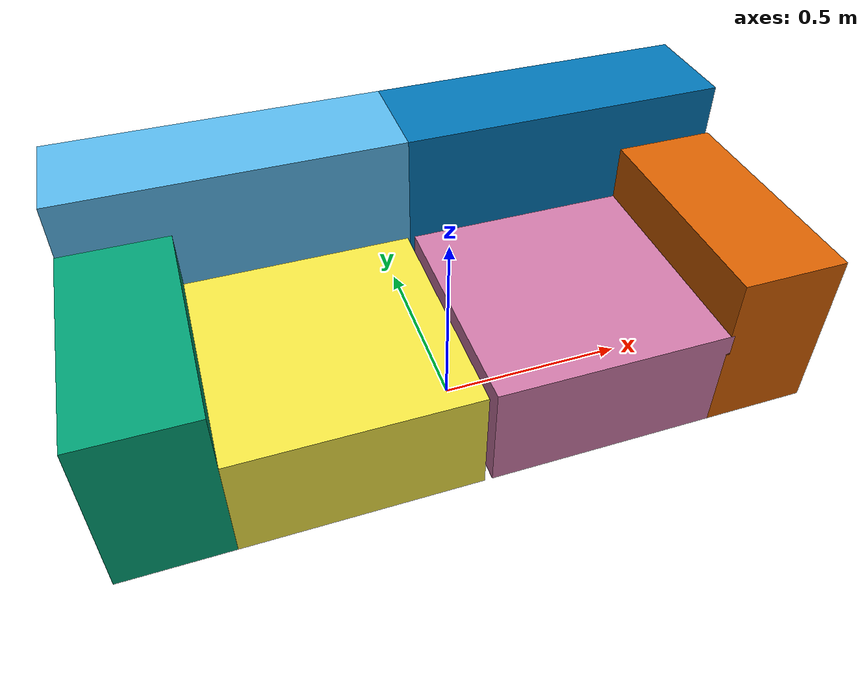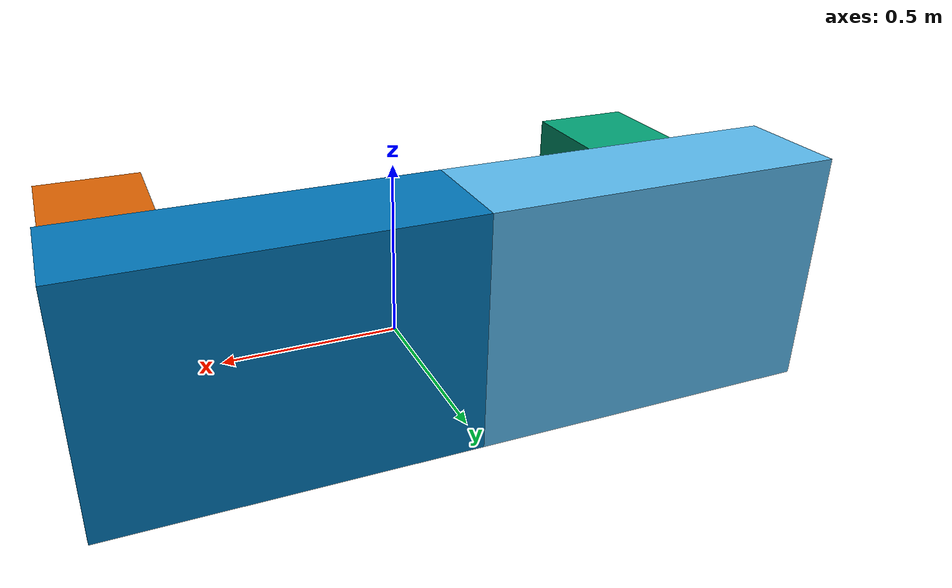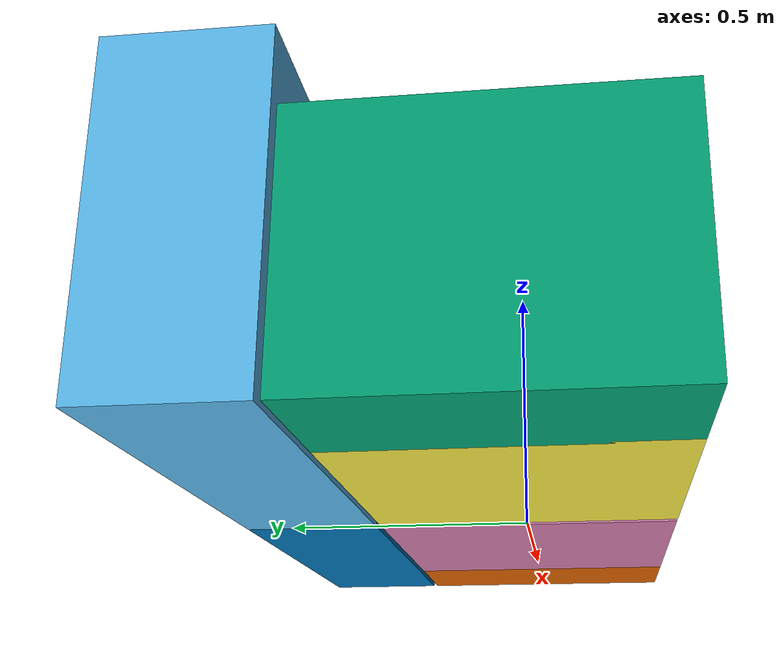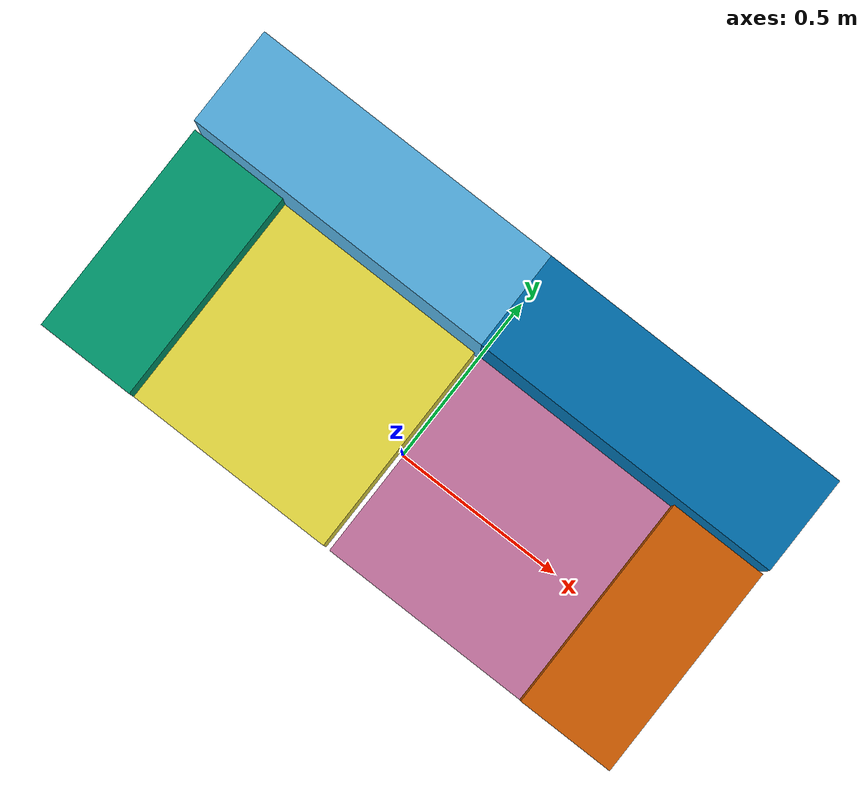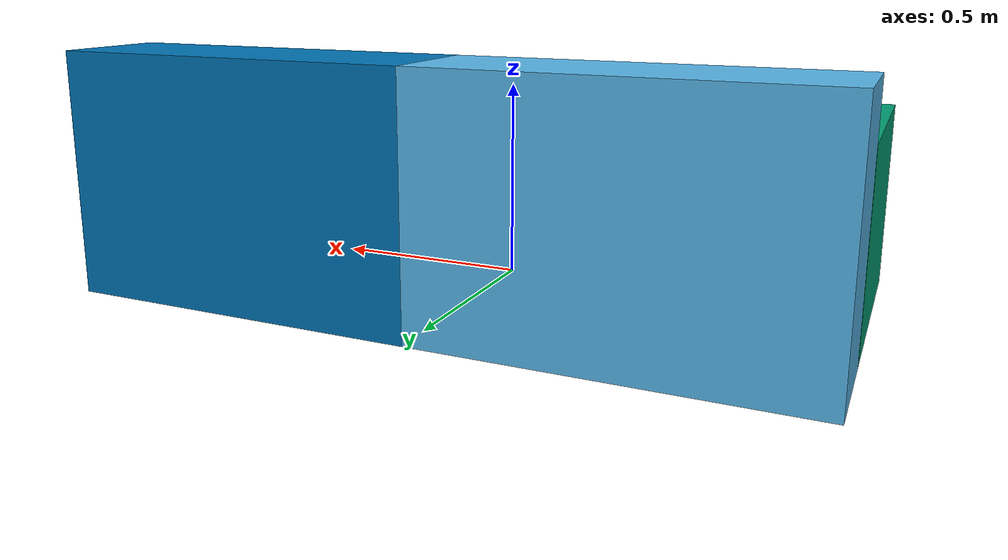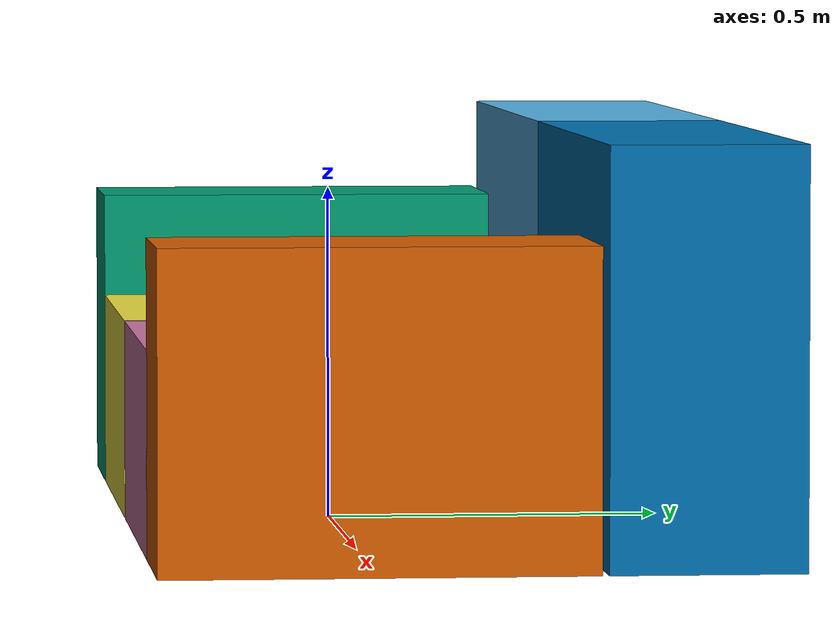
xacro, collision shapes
<?xml version="1.0"?>

<robot
	xmlns:sensor="http://playerstage.sourceforge.net/gazebo/xmlschema/#sensor"
	xmlns:controller="http://playerstage.sourceforge.net/gazebo/xmlschema/#controller"
	xmlns:interface="http://playerstage.sourceforge.net/gazebo/xmlschema/#interface"
	xmlns:xacro="http://playerstage.sourceforge.net/gazebo/xmlschema/#interface"
	name="couch">

<!-- dummy_link -->
	<link name="dummy_link">
		<inertial>
			<origin xyz="0 0 0" />
			<mass value="5.0" />
			<inertia ixx="0.0" ixy="0.0" ixz="0.0" iyy="0.0" iyz="0.0" izz="0.0" />
		</inertial>
		<visual>
			<origin xyz="0 0 0" />
			<geometry>
				<box size="0.00 0.00 0.00" />
			</geometry>
		</visual>
		<collision>
			<origin xyz="0 0 0" />
			<geometry>
				<box size="0.00 0.00 0.00" />
			</geometry>
		</collision>
	</link>

<!-- couch -->

	<!-- left couch back -->
	<link name="left_couch_back">
		<inertial>
			<origin xyz="0 0 0" />
			<mass value="5.0" />
			<inertia ixx="0.0" ixy="0.0" ixz="0.0" iyy="0.0" iyz="0.0" izz="0.0" />
		</inertial>
		<visual>
			<origin xyz="0 0 0" />
			<geometry>
				<mesh filename="package://cob_gazebo_objects/Media/materials/textures/couch_back.dae" />
			</geometry>
		</visual>
		<collision>
			<origin xyz="0 0 0" />
			<geometry>
				<box size="0.90 0.28 0.60" />
			</geometry>
		</collision>
	</link>

	<gazebo reference="left_couch_back">
	</gazebo>

	<joint name="joint_left_couch_back" type="fixed">
		<origin xyz="-0.45 0.46 0.300" rpy="0 0 0" />
		<parent link="dummy_link" />
		<child link="left_couch_back" />
	</joint>

	<!-- left couch side -->
	<link name="left_couch_side">
		<inertial>
			<origin xyz="0 0 0" />
			<mass value="5.0" />
			<inertia ixx="0.0" ixy="0.0" ixz="0.0" iyy="0.0" iyz="0.0" izz="0.0" />
		</inertial>
		<visual>
			<origin xyz="0 0 0" />
			<geometry>
				<mesh filename="package://cob_gazebo_objects/Media/materials/textures/couch_left_side.dae" />
			</geometry>
		</visual>
		<collision>
			<origin xyz="0 0 0" />
			<geometry>
				<box size="0.28 0.62 0.46" />
			</geometry>
		</collision>
	</link>

	<gazebo reference="left_couch_side">
	</gazebo>

	<joint name="joint_left_couch_side" type="fixed">
		<origin xyz="-0.76 0 0.23" rpy="0 0 0" />
		<parent link="dummy_link" />
		<child link="left_couch_side" />
	</joint>

	<!-- left couch middle -->
	<link name="left_couch_middle">
		<inertial>
			<origin xyz="0 0 0" />
			<mass value="5.0" />
			<inertia ixx="0.0" ixy="0.0" ixz="0.0" iyy="0.0" iyz="0.0" izz="0.0" />
		</inertial>
		<visual>
			<origin xyz="0 0 0" />
			<geometry>
				<mesh filename="package://cob_gazebo_objects/Media/materials/textures/couch_middle.dae" />
			</geometry>
		</visual>
		<collision>
			<origin xyz="0 0 0" />
			<geometry>
				<box size="0.62 0.62 0.30" />
			</geometry>
		</collision>
	</link>

	<gazebo reference="left_couch_middle">
	</gazebo>

	<joint name="joint_left_couch_middle" type="fixed">
		<origin xyz="-0.32 0 0.150" rpy="0 0 0" />
		<parent link="dummy_link" />
		<child link="left_couch_middle" />
	</joint>

	<!-- right couch back -->
	<link name="right_couch_back">
		<inertial>
			<origin xyz="0 0 0" />
			<mass value="5.0" />
			<inertia ixx="0.0" ixy="0.0" ixz="0.0" iyy="0.0" iyz="0.0" izz="0.0" />
		</inertial>
		<visual>
			<origin xyz="0 0 0" />
			<geometry>
				<mesh filename="package://cob_gazebo_objects/Media/materials/textures/couch_back.dae" />
			</geometry>
		</visual>
		<collision>
			<origin xyz="0 0 0" />
			<geometry>
				<box size="0.90 0.28 0.60" />
			</geometry>
		</collision>
	</link>

	<gazebo reference="right_couch_back">
	</gazebo>

	<joint name="joint_right_couch_back" type="fixed">
		<origin xyz="0.45 0.46 0.300" rpy="0 0 0" />
		<parent link="dummy_link" />
		<child link="right_couch_back" />
	</joint>

	<!-- right couch side -->
	<link name="right_couch_side">
		<inertial>
			<origin xyz="0 0 0" />
			<mass value="5.0" />
			<inertia ixx="0.0" ixy="0.0" ixz="0.0" iyy="0.0" iyz="0.0" izz="0.0" />
		</inertial>
		<visual>
			<origin xyz="0 0 0" />
			<geometry>
				<mesh filename="package://cob_gazebo_objects/Media/materials/textures/couch_right_side.dae" />
			</geometry>
		</visual>
		<collision>
			<origin xyz="0 0 0" />
			<geometry>
				<box size="0.28 0.62 0.46" />
			</geometry>
		</collision>
	</link>

	<gazebo reference="right_couch_side">
	</gazebo>

	<joint name="joint_right_couch_side" type="fixed">
		<origin xyz="0.76 0 0.230" rpy="0 0 0" />
		<parent link="dummy_link" />
		<child link="right_couch_side" />
	</joint>

	<!-- right couch middle -->
	<link name="right_couch_middle">
		<inertial>
			<origin xyz="0 0 0" />
			<mass value="5.0" />
			<inertia ixx="0.0" ixy="0.0" ixz="0.0" iyy="0.0" iyz="0.0" izz="0.0" />
		</inertial>
		<visual>
			<origin xyz="0 0 0" />
			<geometry>
				<mesh filename="package://cob_gazebo_objects/Media/materials/textures/couch_middle.dae" />
			</geometry>
		</visual>
		<collision>
			<origin xyz="0 0 0" />
			<geometry>
				<box size="0.62 0.62 0.30" />
			</geometry>
		</collision>
	</link>

	<gazebo reference="right_couch_middle">
	</gazebo>

	<joint name="joint_right_couch_middle" type="fixed">
		<origin xyz="0.32 0 0.150" rpy="0 0 0" />
		<parent link="dummy_link" />
		<child link="right_couch_middle" />
	</joint>

<gazebo>
	<static>true</static>
</gazebo>
</robot>
